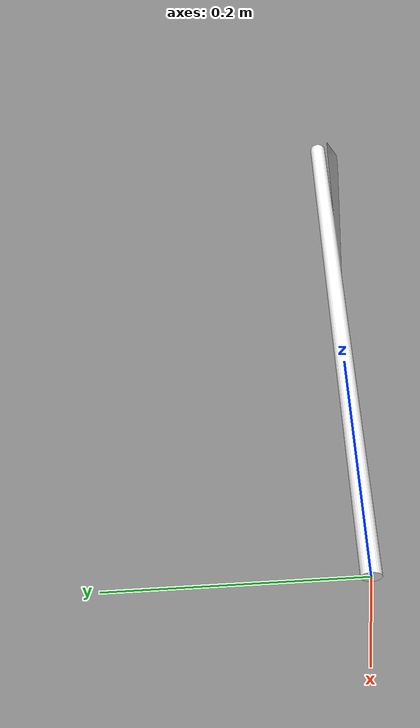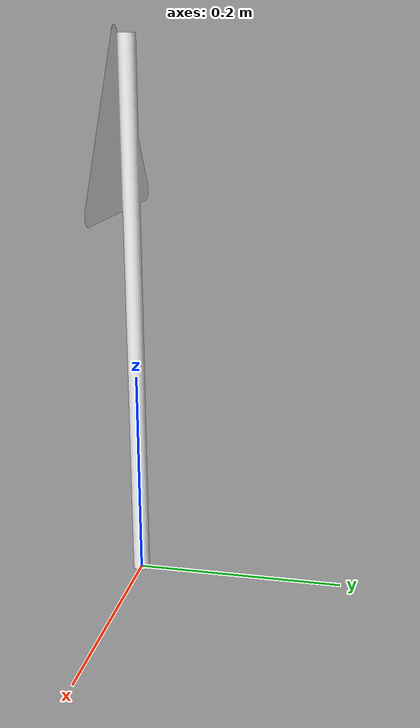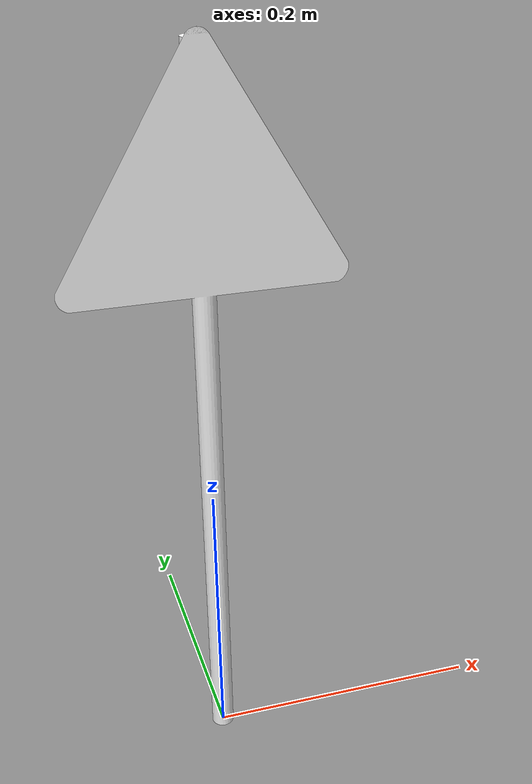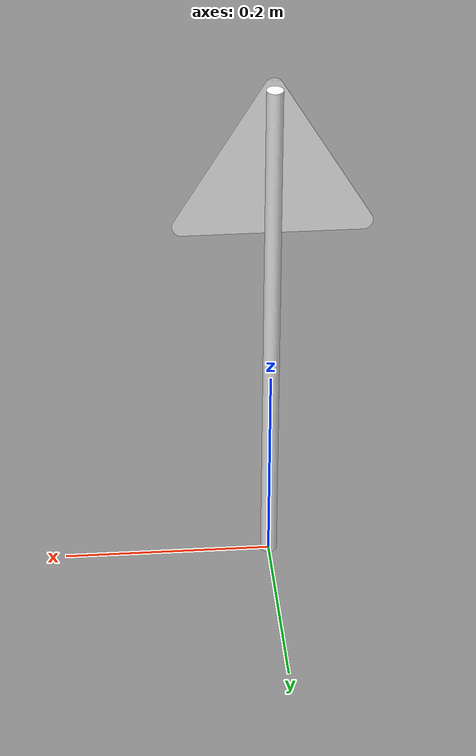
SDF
<?xml version='1.0'?>
<sdf version='1.7'>
  <model name='14-watch-for-children'>
	<static>true</static>
    <link name='link_0'>

		<collision name="collision">
		<geometry>
			<mesh>
				<uri>model://14-watch-for-children/mesh/model.dae</uri>
	            <scale>0 0 0</scale>
			</mesh>
		</geometry>
		</collision>

		<visual name="visual">
		<cast_shadows>true</cast_shadows>
		<geometry>
			<mesh>
				<uri>model://14-watch-for-children/mesh/model.dae</uri>
	            <scale>0.1 0.1 0.1</scale>
			</mesh>
		</geometry>
		</visual>
    </link>
  </model>
</sdf>
